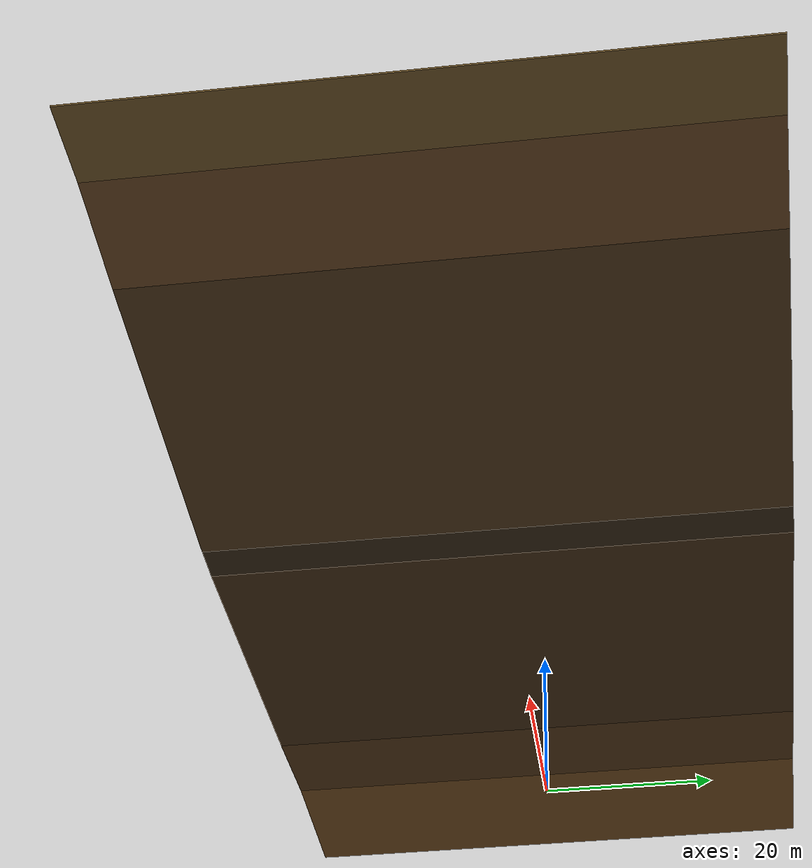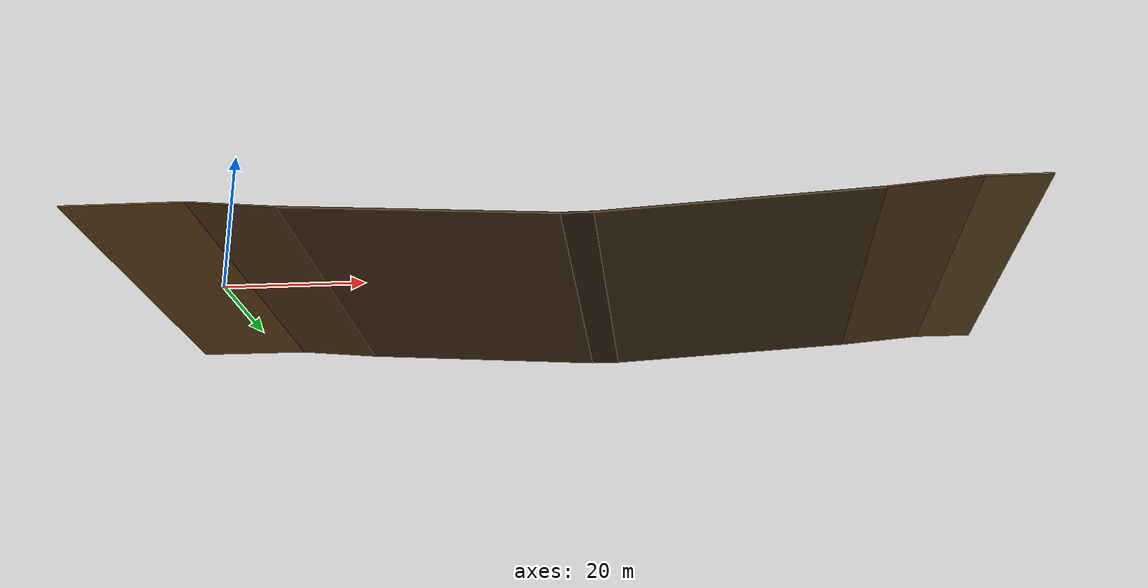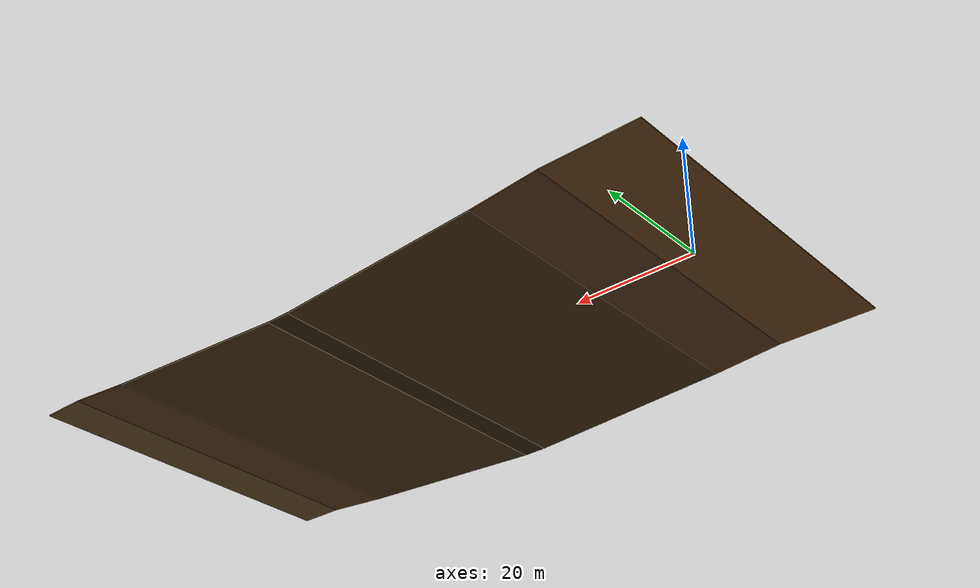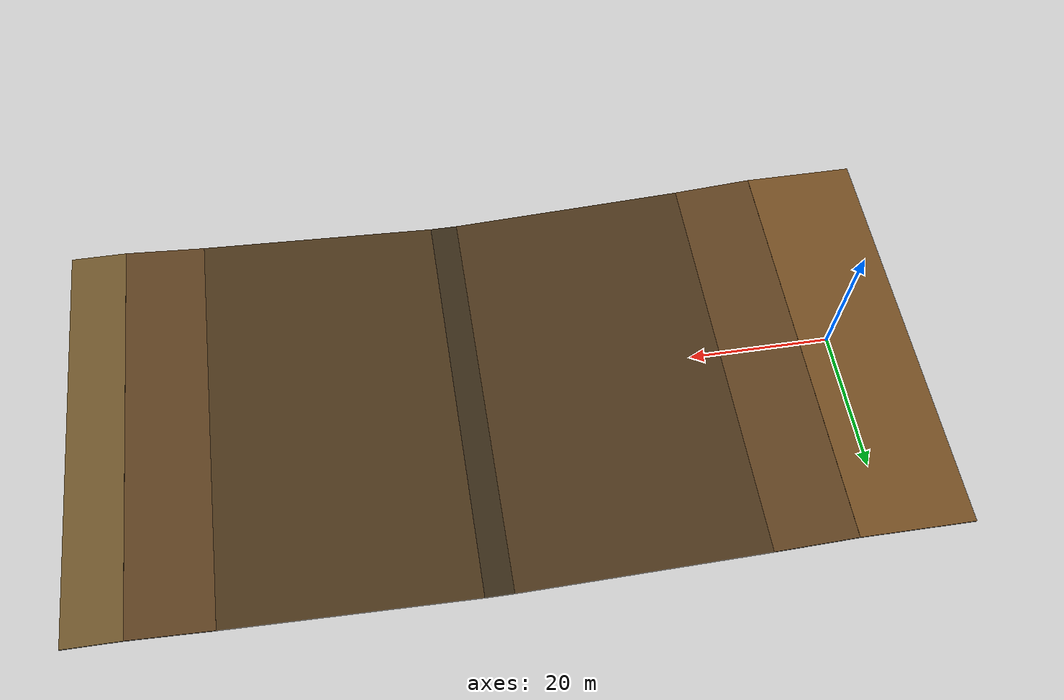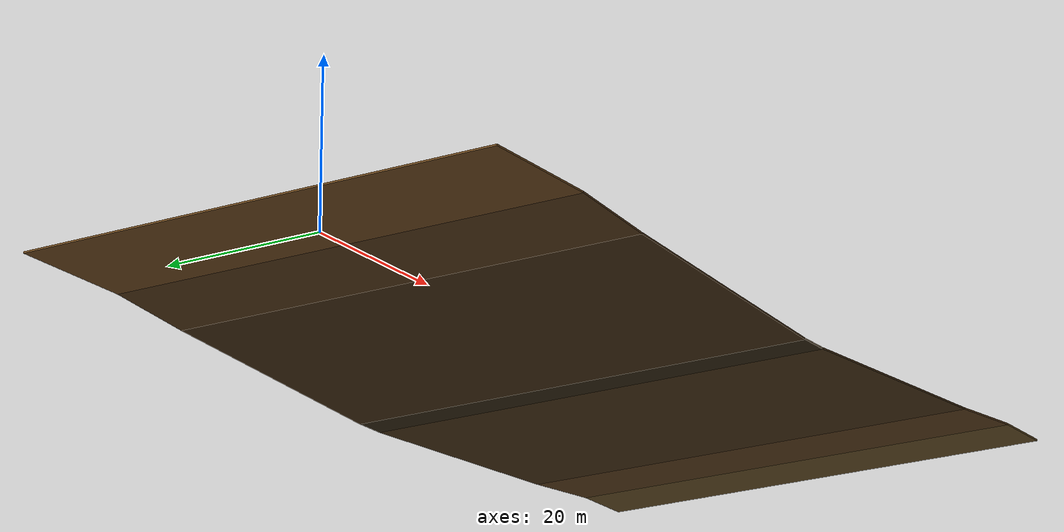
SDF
<?xml version="1.0" ?>
<sdf version="1.10">
  <model name="terrain_demo_5deg">
    <static>true</static>

    <link name="demo_ground_link">
      <collision name="home_plateau_collision">
        <pose>-4 0 -0.10 0 0 0</pose>
        <geometry><box><size>16 60 0.20</size></box></geometry>
        <surface><friction><ode><mu>0.8</mu><mu2>0.8</mu2></ode></friction></surface>
      </collision>
      <collision name="home_slope_5deg_collision">
        <pose>9.7150 0 -0.5996 0 0.087266 0</pose>
        <geometry><box><size>11.4737 60 0.20</size></box></geometry>
        <surface><friction><ode><mu>0.65</mu><mu2>0.65</mu2></ode></friction></surface>
      </collision>
      <collision name="lower_home_slope_collision">
        <pose>32.7150 0 -2.0998 0 0.057789 0</pose>
        <geometry><box><size>34.6279 60 0.20</size></box></geometry>
        <surface><friction><ode><mu>0.5</mu><mu2>0.5</mu2></ode></friction></surface>
      </collision>
      <collision name="centre_floor_collision">
        <pose>52 0 -3.10 0 0 0</pose>
        <geometry><box><size>4 60 0.20</size></box></geometry>
        <surface><friction><ode><mu>0.45</mu><mu2>0.45</mu2></ode></friction></surface>
      </collision>
      <collision name="lower_delivery_slope_collision">
        <pose>71.2850 0 -2.0998 0 -0.057789 0</pose>
        <geometry><box><size>34.6279 60 0.20</size></box></geometry>
        <surface><friction><ode><mu>0.5</mu><mu2>0.5</mu2></ode></friction></surface>
      </collision>
      <collision name="delivery_slope_5deg_collision">
        <pose>94.2850 0 -0.5996 0 -0.087266 0</pose>
        <geometry><box><size>11.4737 60 0.20</size></box></geometry>
        <surface><friction><ode><mu>0.65</mu><mu2>0.65</mu2></ode></friction></surface>
      </collision>
      <collision name="delivery_plateau_collision">
        <pose>104 0 -0.10 0 0 0</pose>
        <geometry><box><size>8 60 0.20</size></box></geometry>
        <surface><friction><ode><mu>0.8</mu><mu2>0.8</mu2></ode></friction></surface>
      </collision>
    </link>
    <link name="terrain_visual_link">
      <visual name="home_plateau_visual"><pose>-4 0 -0.10 0 0 0</pose><geometry><box><size>16 60 0.20</size></box></geometry><material><ambient>0.24 0.16 0.08 1</ambient><diffuse>0.42 0.28 0.12 1</diffuse></material></visual>
      <visual name="home_slope_5deg_visual"><pose>9.7150 0 -0.5996 0 0.087266 0</pose><geometry><box><size>11.4737 60 0.20</size></box></geometry><material><ambient>0.19 0.13 0.06 1</ambient><diffuse>0.34 0.23 0.11 1</diffuse></material></visual>
      <visual name="lower_home_slope_visual"><pose>32.7150 0 -2.0998 0 0.057789 0</pose><geometry><box><size>34.6279 60 0.20</size></box></geometry><material><ambient>0.14 0.10 0.05 1</ambient><diffuse>0.27 0.19 0.09 1</diffuse></material></visual>
      <visual name="centre_floor_visual"><pose>52 0 -3.10 0 0 0</pose><geometry><box><size>4 60 0.20</size></box></geometry><material><ambient>0.10 0.08 0.04 1</ambient><diffuse>0.20 0.15 0.08 1</diffuse></material></visual>
      <visual name="lower_delivery_slope_visual"><pose>71.2850 0 -2.0998 0 -0.057789 0</pose><geometry><box><size>34.6279 60 0.20</size></box></geometry><material><ambient>0.14 0.10 0.05 1</ambient><diffuse>0.27 0.19 0.09 1</diffuse></material></visual>
      <visual name="delivery_slope_5deg_visual"><pose>94.2850 0 -0.5996 0 -0.087266 0</pose><geometry><box><size>11.4737 60 0.20</size></box></geometry><material><ambient>0.19 0.13 0.06 1</ambient><diffuse>0.34 0.23 0.11 1</diffuse></material></visual>
      <visual name="delivery_plateau_visual"><pose>104 0 -0.10 0 0 0</pose><geometry><box><size>8 60 0.20</size></box></geometry><material><ambient>0.22 0.16 0.07 1</ambient><diffuse>0.40 0.31 0.15 1</diffuse></material></visual>
    </link>
  </model>
</sdf>
